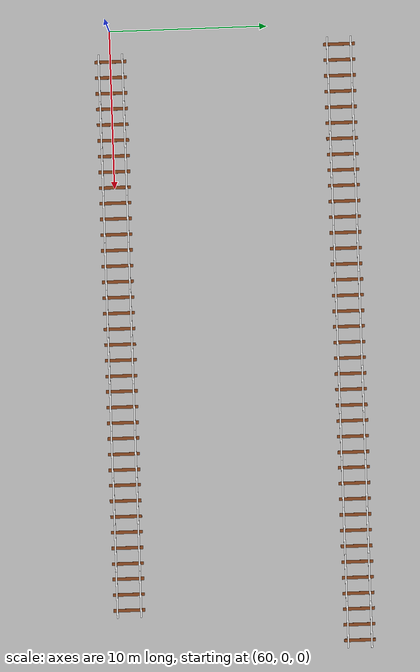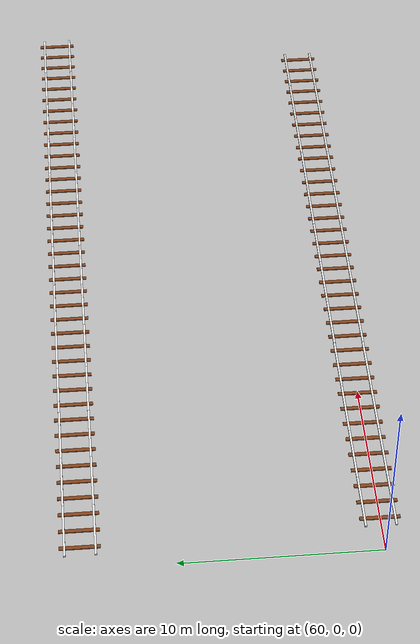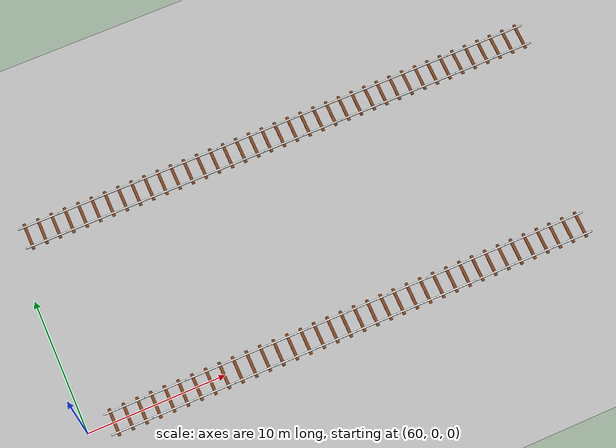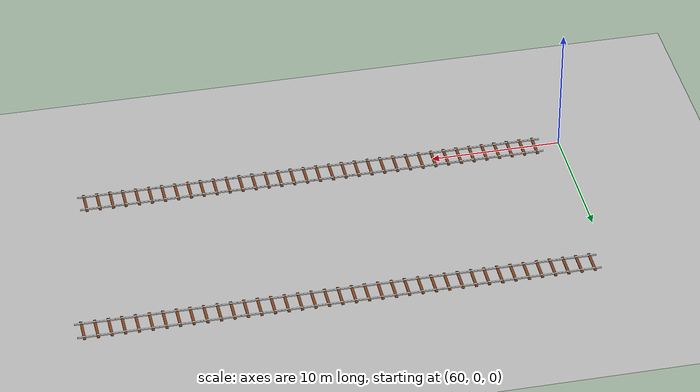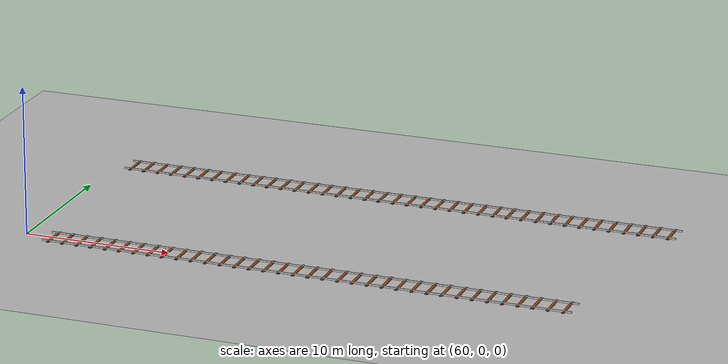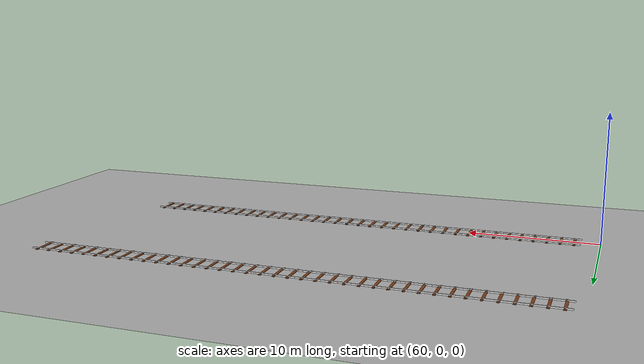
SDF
<sdf version="1.10">
 <world name="myworld">
  <model name="ground_plane">
   <static>true</static>
   <link name="link">
    <collision name="collision">
     <geometry><plane><normal>0 0 1</normal><size>1000 1000</size></plane></geometry>
    </collision>
    <visual name="visual">
     <geometry><plane><normal>0 0 1</normal><size>1000 1000</size></plane></geometry>
     <material>
      <ambient>0.699999988 0.699999988 0.699999988 1</ambient>
      <diffuse>0.699999988 0.699999988 0.699999988 1</diffuse>
     </material>
    </visual>
    <inertial>
     <mass>1</mass>
     <inertia><ixx>1</ixx><ixy>0</ixy><ixz>0</ixz><iyy>1</iyy><iyz>0</iyz><izz>1</izz></inertia>
    </inertial>
   </link>
  </model>
  <model name="rail12_10">
   <static>true</static>
   <pose>62.920200000000001 0.0070395500000000003 0 0 0 0</pose>
   <link name="rail_link">
    <visual name="rail_left">
     <pose>0 0.75 0.050000000000000003 0 0 0</pose>
     <geometry><box><size>3 0.10000000000000001 0.10000000000000001</size></box></geometry>
     <material>
      <ambient>0.800000012 0.800000012 0.800000012 1</ambient>
      <diffuse>0.899999976 0.899999976 0.899999976 1</diffuse>
     </material>
    </visual>
    <visual name="rail_right">
     <pose>0 -0.75 0.050000000000000003 0 0 0</pose>
     <geometry><box><size>3 0.10000000000000001 0.10000000000000001</size></box></geometry>
     <material>
      <ambient>0.800000012 0.800000012 0.800000012 1</ambient>
      <diffuse>0.899999976 0.899999976 0.899999976 1</diffuse>
     </material>
    </visual>
    <visual name="traverse_1">
     <pose>1 0 0.025000000000000001 0 0 0</pose>
     <geometry><box><size>0.20000000000000001 2 0.050000000000000003</size></box></geometry>
     <material>
      <ambient>0.400000006 0.200000003 0.100000001 1</ambient>
      <diffuse>0.5 0.25 0.100000001 1</diffuse>
     </material>
    </visual>
    <visual name="traverse_2">
     <pose>0 0 0.025000000000000001 0 0 0</pose>
     <geometry><box><size>0.20000000000000001 2 0.050000000000000003</size></box></geometry>
     <material>
      <ambient>0.400000006 0.200000003 0.100000001 1</ambient>
      <diffuse>0.5 0.25 0.100000001 1</diffuse>
     </material>
    </visual>
    <visual name="traverse_3">
     <pose>-1 0 0.025000000000000001 0 0 0</pose>
     <geometry><box><size>0.20000000000000001 2 0.050000000000000003</size></box></geometry>
     <material>
      <ambient>0.400000006 0.200000003 0.100000001 1</ambient>
      <diffuse>0.5 0.25 0.100000001 1</diffuse>
     </material>
    </visual>
   </link>
  </model>
  <model name="rail12_11">
   <static>true</static>
   <pose>65.909700000000001 0.0089850999999999993 0 0 0 0</pose>
   <link name="rail_link">
    <visual name="rail_left">
     <pose>0 0.75 0.050000000000000003 0 0 0</pose>
     <geometry><box><size>3 0.10000000000000001 0.10000000000000001</size></box></geometry>
     <material>
      <ambient>0.800000012 0.800000012 0.800000012 1</ambient>
      <diffuse>0.899999976 0.899999976 0.899999976 1</diffuse>
     </material>
    </visual>
    <visual name="rail_right">
     <pose>0 -0.75 0.050000000000000003 0 0 0</pose>
     <geometry><box><size>3 0.10000000000000001 0.10000000000000001</size></box></geometry>
     <material>
      <ambient>0.800000012 0.800000012 0.800000012 1</ambient>
      <diffuse>0.899999976 0.899999976 0.899999976 1</diffuse>
     </material>
    </visual>
    <visual name="traverse_1">
     <pose>1 0 0.025000000000000001 0 0 0</pose>
     <geometry><box><size>0.20000000000000001 2 0.050000000000000003</size></box></geometry>
     <material>
      <ambient>0.400000006 0.200000003 0.100000001 1</ambient>
      <diffuse>0.5 0.25 0.100000001 1</diffuse>
     </material>
    </visual>
    <visual name="traverse_2">
     <pose>0 0 0.025000000000000001 0 0 0</pose>
     <geometry><box><size>0.20000000000000001 2 0.050000000000000003</size></box></geometry>
     <material>
      <ambient>0.400000006 0.200000003 0.100000001 1</ambient>
      <diffuse>0.5 0.25 0.100000001 1</diffuse>
     </material>
    </visual>
    <visual name="traverse_3">
     <pose>-1 0 0.025000000000000001 0 0 0</pose>
     <geometry><box><size>0.20000000000000001 2 0.050000000000000003</size></box></geometry>
     <material>
      <ambient>0.400000006 0.200000003 0.100000001 1</ambient>
      <diffuse>0.5 0.25 0.100000001 1</diffuse>
     </material>
    </visual>
   </link>
  </model>
  <model name="rail12_12">
   <static>true</static>
   <pose>68.912999999999997 0.0099215899999999992 0 0 0 0</pose>
   <link name="rail_link">
    <visual name="rail_left">
     <pose>0 0.75 0.050000000000000003 0 0 0</pose>
     <geometry><box><size>3 0.10000000000000001 0.10000000000000001</size></box></geometry>
     <material>
      <ambient>0.800000012 0.800000012 0.800000012 1</ambient>
      <diffuse>0.899999976 0.899999976 0.899999976 1</diffuse>
     </material>
    </visual>
    <visual name="rail_right">
     <pose>0 -0.75 0.050000000000000003 0 0 0</pose>
     <geometry><box><size>3 0.10000000000000001 0.10000000000000001</size></box></geometry>
     <material>
      <ambient>0.800000012 0.800000012 0.800000012 1</ambient>
      <diffuse>0.899999976 0.899999976 0.899999976 1</diffuse>
     </material>
    </visual>
    <visual name="traverse_1">
     <pose>1 0 0.025000000000000001 0 0 0</pose>
     <geometry><box><size>0.20000000000000001 2 0.050000000000000003</size></box></geometry>
     <material>
      <ambient>0.400000006 0.200000003 0.100000001 1</ambient>
      <diffuse>0.5 0.25 0.100000001 1</diffuse>
     </material>
    </visual>
    <visual name="traverse_2">
     <pose>0 0 0.025000000000000001 0 0 0</pose>
     <geometry><box><size>0.20000000000000001 2 0.050000000000000003</size></box></geometry>
     <material>
      <ambient>0.400000006 0.200000003 0.100000001 1</ambient>
      <diffuse>0.5 0.25 0.100000001 1</diffuse>
     </material>
    </visual>
    <visual name="traverse_3">
     <pose>-1 0 0.025000000000000001 0 0 0</pose>
     <geometry><box><size>0.20000000000000001 2 0.050000000000000003</size></box></geometry>
     <material>
      <ambient>0.400000006 0.200000003 0.100000001 1</ambient>
      <diffuse>0.5 0.25 0.100000001 1</diffuse>
     </material>
    </visual>
   </link>
  </model>
  <model name="rail12_13">
   <static>true</static>
   <pose>71.899600000000007 0.0070941600000000004 0 0 0 0</pose>
   <link name="rail_link">
    <visual name="rail_left">
     <pose>0 0.75 0.050000000000000003 0 0 0</pose>
     <geometry><box><size>3 0.10000000000000001 0.10000000000000001</size></box></geometry>
     <material>
      <ambient>0.800000012 0.800000012 0.800000012 1</ambient>
      <diffuse>0.899999976 0.899999976 0.899999976 1</diffuse>
     </material>
    </visual>
    <visual name="rail_right">
     <pose>0 -0.75 0.050000000000000003 0 0 0</pose>
     <geometry><box><size>3 0.10000000000000001 0.10000000000000001</size></box></geometry>
     <material>
      <ambient>0.800000012 0.800000012 0.800000012 1</ambient>
      <diffuse>0.899999976 0.899999976 0.899999976 1</diffuse>
     </material>
    </visual>
    <visual name="traverse_1">
     <pose>1 0 0.025000000000000001 0 0 0</pose>
     <geometry><box><size>0.20000000000000001 2 0.050000000000000003</size></box></geometry>
     <material>
      <ambient>0.400000006 0.200000003 0.100000001 1</ambient>
      <diffuse>0.5 0.25 0.100000001 1</diffuse>
     </material>
    </visual>
    <visual name="traverse_2">
     <pose>0 0 0.025000000000000001 0 0 0</pose>
     <geometry><box><size>0.20000000000000001 2 0.050000000000000003</size></box></geometry>
     <material>
      <ambient>0.400000006 0.200000003 0.100000001 1</ambient>
      <diffuse>0.5 0.25 0.100000001 1</diffuse>
     </material>
    </visual>
    <visual name="traverse_3">
     <pose>-1 0 0.025000000000000001 0 0 0</pose>
     <geometry><box><size>0.20000000000000001 2 0.050000000000000003</size></box></geometry>
     <material>
      <ambient>0.400000006 0.200000003 0.100000001 1</ambient>
      <diffuse>0.5 0.25 0.100000001 1</diffuse>
     </material>
    </visual>
   </link>
  </model>
  <model name="rail12_14">
   <static>true</static>
   <pose>74.9011 -0.0029030599999999998 0 0 0 0</pose>
   <link name="rail_link">
    <visual name="rail_left">
     <pose>0 0.75 0.050000000000000003 0 0 0</pose>
     <geometry><box><size>3 0.10000000000000001 0.10000000000000001</size></box></geometry>
     <material>
      <ambient>0.800000012 0.800000012 0.800000012 1</ambient>
      <diffuse>0.899999976 0.899999976 0.899999976 1</diffuse>
     </material>
    </visual>
    <visual name="rail_right">
     <pose>0 -0.75 0.050000000000000003 0 0 0</pose>
     <geometry><box><size>3 0.10000000000000001 0.10000000000000001</size></box></geometry>
     <material>
      <ambient>0.800000012 0.800000012 0.800000012 1</ambient>
      <diffuse>0.899999976 0.899999976 0.899999976 1</diffuse>
     </material>
    </visual>
    <visual name="traverse_1">
     <pose>1 0 0.025000000000000001 0 0 0</pose>
     <geometry><box><size>0.20000000000000001 2 0.050000000000000003</size></box></geometry>
     <material>
      <ambient>0.400000006 0.200000003 0.100000001 1</ambient>
      <diffuse>0.5 0.25 0.100000001 1</diffuse>
     </material>
    </visual>
    <visual name="traverse_2">
     <pose>0 0 0.025000000000000001 0 0 0</pose>
     <geometry><box><size>0.20000000000000001 2 0.050000000000000003</size></box></geometry>
     <material>
      <ambient>0.400000006 0.200000003 0.100000001 1</ambient>
      <diffuse>0.5 0.25 0.100000001 1</diffuse>
     </material>
    </visual>
    <visual name="traverse_3">
     <pose>-1 0 0.025000000000000001 0 0 0</pose>
     <geometry><box><size>0.20000000000000001 2 0.050000000000000003</size></box></geometry>
     <material>
      <ambient>0.400000006 0.200000003 0.100000001 1</ambient>
      <diffuse>0.5 0.25 0.100000001 1</diffuse>
     </material>
    </visual>
   </link>
  </model>
  <model name="rail12_15">
   <static>true</static>
   <pose>77.900700000000001 -0.0032721 0 0 0 0</pose>
   <link name="rail_link">
    <visual name="rail_left">
     <pose>0 0.75 0.050000000000000003 0 0 0</pose>
     <geometry><box><size>3 0.10000000000000001 0.10000000000000001</size></box></geometry>
     <material>
      <ambient>0.800000012 0.800000012 0.800000012 1</ambient>
      <diffuse>0.899999976 0.899999976 0.899999976 1</diffuse>
     </material>
    </visual>
    <visual name="rail_right">
     <pose>0 -0.75 0.050000000000000003 0 0 0</pose>
     <geometry><box><size>3 0.10000000000000001 0.10000000000000001</size></box></geometry>
     <material>
      <ambient>0.800000012 0.800000012 0.800000012 1</ambient>
      <diffuse>0.899999976 0.899999976 0.899999976 1</diffuse>
     </material>
    </visual>
    <visual name="traverse_1">
     <pose>1 0 0.025000000000000001 0 0 0</pose>
     <geometry><box><size>0.20000000000000001 2 0.050000000000000003</size></box></geometry>
     <material>
      <ambient>0.400000006 0.200000003 0.100000001 1</ambient>
      <diffuse>0.5 0.25 0.100000001 1</diffuse>
     </material>
    </visual>
    <visual name="traverse_2">
     <pose>0 0 0.025000000000000001 0 0 0</pose>
     <geometry><box><size>0.20000000000000001 2 0.050000000000000003</size></box></geometry>
     <material>
      <ambient>0.400000006 0.200000003 0.100000001 1</ambient>
      <diffuse>0.5 0.25 0.100000001 1</diffuse>
     </material>
    </visual>
    <visual name="traverse_3">
     <pose>-1 0 0.025000000000000001 0 0 0</pose>
     <geometry><box><size>0.20000000000000001 2 0.050000000000000003</size></box></geometry>
     <material>
      <ambient>0.400000006 0.200000003 0.100000001 1</ambient>
      <diffuse>0.5 0.25 0.100000001 1</diffuse>
     </material>
    </visual>
   </link>
  </model>
  <model name="rail12_16">
   <static>true</static>
   <pose>80.891599999999997 -0.0016588499999999999 0 0 0 0</pose>
   <link name="rail_link">
    <visual name="rail_left">
     <pose>0 0.75 0.050000000000000003 0 0 0</pose>
     <geometry><box><size>3 0.10000000000000001 0.10000000000000001</size></box></geometry>
     <material>
      <ambient>0.800000012 0.800000012 0.800000012 1</ambient>
      <diffuse>0.899999976 0.899999976 0.899999976 1</diffuse>
     </material>
    </visual>
    <visual name="rail_right">
     <pose>0 -0.75 0.050000000000000003 0 0 0</pose>
     <geometry><box><size>3 0.10000000000000001 0.10000000000000001</size></box></geometry>
     <material>
      <ambient>0.800000012 0.800000012 0.800000012 1</ambient>
      <diffuse>0.899999976 0.899999976 0.899999976 1</diffuse>
     </material>
    </visual>
    <visual name="traverse_1">
     <pose>1 0 0.025000000000000001 0 0 0</pose>
     <geometry><box><size>0.20000000000000001 2 0.050000000000000003</size></box></geometry>
     <material>
      <ambient>0.400000006 0.200000003 0.100000001 1</ambient>
      <diffuse>0.5 0.25 0.100000001 1</diffuse>
     </material>
    </visual>
    <visual name="traverse_2">
     <pose>0 0 0.025000000000000001 0 0 0</pose>
     <geometry><box><size>0.20000000000000001 2 0.050000000000000003</size></box></geometry>
     <material>
      <ambient>0.400000006 0.200000003 0.100000001 1</ambient>
      <diffuse>0.5 0.25 0.100000001 1</diffuse>
     </material>
    </visual>
    <visual name="traverse_3">
     <pose>-1 0 0.025000000000000001 0 0 0</pose>
     <geometry><box><size>0.20000000000000001 2 0.050000000000000003</size></box></geometry>
     <material>
      <ambient>0.400000006 0.200000003 0.100000001 1</ambient>
      <diffuse>0.5 0.25 0.100000001 1</diffuse>
     </material>
    </visual>
   </link>
  </model>
  <model name="rail12_17">
   <static>true</static>
   <pose>83.869900000000001 -0.0010890100000000001 0 0 0 0</pose>
   <link name="rail_link">
    <visual name="rail_left">
     <pose>0 0.75 0.050000000000000003 0 0 0</pose>
     <geometry><box><size>3 0.10000000000000001 0.10000000000000001</size></box></geometry>
     <material>
      <ambient>0.800000012 0.800000012 0.800000012 1</ambient>
      <diffuse>0.899999976 0.899999976 0.899999976 1</diffuse>
     </material>
    </visual>
    <visual name="rail_right">
     <pose>0 -0.75 0.050000000000000003 0 0 0</pose>
     <geometry><box><size>3 0.10000000000000001 0.10000000000000001</size></box></geometry>
     <material>
      <ambient>0.800000012 0.800000012 0.800000012 1</ambient>
      <diffuse>0.899999976 0.899999976 0.899999976 1</diffuse>
     </material>
    </visual>
    <visual name="traverse_1">
     <pose>1 0 0.025000000000000001 0 0 0</pose>
     <geometry><box><size>0.20000000000000001 2 0.050000000000000003</size></box></geometry>
     <material>
      <ambient>0.400000006 0.200000003 0.100000001 1</ambient>
      <diffuse>0.5 0.25 0.100000001 1</diffuse>
     </material>
    </visual>
    <visual name="traverse_2">
     <pose>0 0 0.025000000000000001 0 0 0</pose>
     <geometry><box><size>0.20000000000000001 2 0.050000000000000003</size></box></geometry>
     <material>
      <ambient>0.400000006 0.200000003 0.100000001 1</ambient>
      <diffuse>0.5 0.25 0.100000001 1</diffuse>
     </material>
    </visual>
    <visual name="traverse_3">
     <pose>-1 0 0.025000000000000001 0 0 0</pose>
     <geometry><box><size>0.20000000000000001 2 0.050000000000000003</size></box></geometry>
     <material>
      <ambient>0.400000006 0.200000003 0.100000001 1</ambient>
      <diffuse>0.5 0.25 0.100000001 1</diffuse>
     </material>
    </visual>
   </link>
  </model>
  <model name="rail12_18">
   <static>true</static>
   <pose>86.861400000000003 -0.0080028800000000004 0 0 0 0</pose>
   <link name="rail_link">
    <visual name="rail_left">
     <pose>0 0.75 0.050000000000000003 0 0 0</pose>
     <geometry><box><size>3 0.10000000000000001 0.10000000000000001</size></box></geometry>
     <material>
      <ambient>0.800000012 0.800000012 0.800000012 1</ambient>
      <diffuse>0.899999976 0.899999976 0.899999976 1</diffuse>
     </material>
    </visual>
    <visual name="rail_right">
     <pose>0 -0.75 0.050000000000000003 0 0 0</pose>
     <geometry><box><size>3 0.10000000000000001 0.10000000000000001</size></box></geometry>
     <material>
      <ambient>0.800000012 0.800000012 0.800000012 1</ambient>
      <diffuse>0.899999976 0.899999976 0.899999976 1</diffuse>
     </material>
    </visual>
    <visual name="traverse_1">
     <pose>1 0 0.025000000000000001 0 0 0</pose>
     <geometry><box><size>0.20000000000000001 2 0.050000000000000003</size></box></geometry>
     <material>
      <ambient>0.400000006 0.200000003 0.100000001 1</ambient>
      <diffuse>0.5 0.25 0.100000001 1</diffuse>
     </material>
    </visual>
    <visual name="traverse_2">
     <pose>0 0 0.025000000000000001 0 0 0</pose>
     <geometry><box><size>0.20000000000000001 2 0.050000000000000003</size></box></geometry>
     <material>
      <ambient>0.400000006 0.200000003 0.100000001 1</ambient>
      <diffuse>0.5 0.25 0.100000001 1</diffuse>
     </material>
    </visual>
    <visual name="traverse_3">
     <pose>-1 0 0.025000000000000001 0 0 0</pose>
     <geometry><box><size>0.20000000000000001 2 0.050000000000000003</size></box></geometry>
     <material>
      <ambient>0.400000006 0.200000003 0.100000001 1</ambient>
      <diffuse>0.5 0.25 0.100000001 1</diffuse>
     </material>
    </visual>
   </link>
  </model>
  <model name="rail12_19">
   <static>true</static>
   <pose>89.831900000000005 -0.0024379800000000002 0 0 0 0</pose>
   <link name="rail_link">
    <visual name="rail_left">
     <pose>0 0.75 0.050000000000000003 0 0 0</pose>
     <geometry><box><size>3 0.10000000000000001 0.10000000000000001</size></box></geometry>
     <material>
      <ambient>0.800000012 0.800000012 0.800000012 1</ambient>
      <diffuse>0.899999976 0.899999976 0.899999976 1</diffuse>
     </material>
    </visual>
    <visual name="rail_right">
     <pose>0 -0.75 0.050000000000000003 0 0 0</pose>
     <geometry><box><size>3 0.10000000000000001 0.10000000000000001</size></box></geometry>
     <material>
      <ambient>0.800000012 0.800000012 0.800000012 1</ambient>
      <diffuse>0.899999976 0.899999976 0.899999976 1</diffuse>
     </material>
    </visual>
    <visual name="traverse_1">
     <pose>1 0 0.025000000000000001 0 0 0</pose>
     <geometry><box><size>0.20000000000000001 2 0.050000000000000003</size></box></geometry>
     <material>
      <ambient>0.400000006 0.200000003 0.100000001 1</ambient>
      <diffuse>0.5 0.25 0.100000001 1</diffuse>
     </material>
    </visual>
    <visual name="traverse_2">
     <pose>0 0 0.025000000000000001 0 0 0</pose>
     <geometry><box><size>0.20000000000000001 2 0.050000000000000003</size></box></geometry>
     <material>
      <ambient>0.400000006 0.200000003 0.100000001 1</ambient>
      <diffuse>0.5 0.25 0.100000001 1</diffuse>
     </material>
    </visual>
    <visual name="traverse_3">
     <pose>-1 0 0.025000000000000001 0 0 0</pose>
     <geometry><box><size>0.20000000000000001 2 0.050000000000000003</size></box></geometry>
     <material>
      <ambient>0.400000006 0.200000003 0.100000001 1</ambient>
      <diffuse>0.5 0.25 0.100000001 1</diffuse>
     </material>
    </visual>
   </link>
  </model>
  <model name="rail12_20">
   <static>true</static>
   <pose>92.8245 -0.00114927 0 0 0 0</pose>
   <link name="rail_link">
    <visual name="rail_left">
     <pose>0 0.75 0.050000000000000003 0 0 0</pose>
     <geometry><box><size>3 0.10000000000000001 0.10000000000000001</size></box></geometry>
     <material>
      <ambient>0.800000012 0.800000012 0.800000012 1</ambient>
      <diffuse>0.899999976 0.899999976 0.899999976 1</diffuse>
     </material>
    </visual>
    <visual name="rail_right">
     <pose>0 -0.75 0.050000000000000003 0 0 0</pose>
     <geometry><box><size>3 0.10000000000000001 0.10000000000000001</size></box></geometry>
     <material>
      <ambient>0.800000012 0.800000012 0.800000012 1</ambient>
      <diffuse>0.899999976 0.899999976 0.899999976 1</diffuse>
     </material>
    </visual>
    <visual name="traverse_1">
     <pose>1 0 0.025000000000000001 0 0 0</pose>
     <geometry><box><size>0.20000000000000001 2 0.050000000000000003</size></box></geometry>
     <material>
      <ambient>0.400000006 0.200000003 0.100000001 1</ambient>
      <diffuse>0.5 0.25 0.100000001 1</diffuse>
     </material>
    </visual>
    <visual name="traverse_2">
     <pose>0 0 0.025000000000000001 0 0 0</pose>
     <geometry><box><size>0.20000000000000001 2 0.050000000000000003</size></box></geometry>
     <material>
      <ambient>0.400000006 0.200000003 0.100000001 1</ambient>
      <diffuse>0.5 0.25 0.100000001 1</diffuse>
     </material>
    </visual>
    <visual name="traverse_3">
     <pose>-1 0 0.025000000000000001 0 0 0</pose>
     <geometry><box><size>0.20000000000000001 2 0.050000000000000003</size></box></geometry>
     <material>
      <ambient>0.400000006 0.200000003 0.100000001 1</ambient>
      <diffuse>0.5 0.25 0.100000001 1</diffuse>
     </material>
    </visual>
   </link>
  </model>
  <model name="rail12_21">
   <static>true</static>
   <pose>95.793599999999998 -0.0080347000000000005 0 0 0 0</pose>
   <link name="rail_link">
    <visual name="rail_left">
     <pose>0 0.75 0.050000000000000003 0 0 0</pose>
     <geometry><box><size>3 0.10000000000000001 0.10000000000000001</size></box></geometry>
     <material>
      <ambient>0.800000012 0.800000012 0.800000012 1</ambient>
      <diffuse>0.899999976 0.899999976 0.899999976 1</diffuse>
     </material>
    </visual>
    <visual name="rail_right">
     <pose>0 -0.75 0.050000000000000003 0 0 0</pose>
     <geometry><box><size>3 0.10000000000000001 0.10000000000000001</size></box></geometry>
     <material>
      <ambient>0.800000012 0.800000012 0.800000012 1</ambient>
      <diffuse>0.899999976 0.899999976 0.899999976 1</diffuse>
     </material>
    </visual>
    <visual name="traverse_1">
     <pose>1 0 0.025000000000000001 0 0 0</pose>
     <geometry><box><size>0.20000000000000001 2 0.050000000000000003</size></box></geometry>
     <material>
      <ambient>0.400000006 0.200000003 0.100000001 1</ambient>
      <diffuse>0.5 0.25 0.100000001 1</diffuse>
     </material>
    </visual>
    <visual name="traverse_2">
     <pose>0 0 0.025000000000000001 0 0 0</pose>
     <geometry><box><size>0.20000000000000001 2 0.050000000000000003</size></box></geometry>
     <material>
      <ambient>0.400000006 0.200000003 0.100000001 1</ambient>
      <diffuse>0.5 0.25 0.100000001 1</diffuse>
     </material>
    </visual>
    <visual name="traverse_3">
     <pose>-1 0 0.025000000000000001 0 0 0</pose>
     <geometry><box><size>0.20000000000000001 2 0.050000000000000003</size></box></geometry>
     <material>
      <ambient>0.400000006 0.200000003 0.100000001 1</ambient>
      <diffuse>0.5 0.25 0.100000001 1</diffuse>
     </material>
    </visual>
   </link>
  </model>
  <model name="rail12_37_44">
   <static>true</static>
   <pose>62.284199999999998 14.5541099999999997 0 0 0 0</pose>
   <link name="rail_link">
    <visual name="rail_left">
     <pose>0 0.75 0.050000000000000003 0 0 0</pose>
     <geometry><box><size>3 0.10000000000000001 0.10000000000000001</size></box></geometry>
     <material>
      <ambient>0.800000012 0.800000012 0.800000012 1</ambient>
      <diffuse>0.899999976 0.899999976 0.899999976 1</diffuse>
     </material>
    </visual>
    <visual name="rail_right">
     <pose>0 -0.75 0.050000000000000003 0 0 0</pose>
     <geometry><box><size>3 0.10000000000000001 0.10000000000000001</size></box></geometry>
     <material>
      <ambient>0.800000012 0.800000012 0.800000012 1</ambient>
      <diffuse>0.899999976 0.899999976 0.899999976 1</diffuse>
     </material>
    </visual>
    <visual name="traverse_1">
     <pose>1 0 0.025000000000000001 0 0 0</pose>
     <geometry><box><size>0.20000000000000001 2 0.050000000000000003</size></box></geometry>
     <material>
      <ambient>0.400000006 0.200000003 0.100000001 1</ambient>
      <diffuse>0.5 0.25 0.100000001 1</diffuse>
     </material>
    </visual>
    <visual name="traverse_2">
     <pose>0 0 0.025000000000000001 0 0 0</pose>
     <geometry><box><size>0.20000000000000001 2 0.050000000000000003</size></box></geometry>
     <material>
      <ambient>0.400000006 0.200000003 0.100000001 1</ambient>
      <diffuse>0.5 0.25 0.100000001 1</diffuse>
     </material>
    </visual>
    <visual name="traverse_3">
     <pose>-1 0 0.025000000000000001 0 0 0</pose>
     <geometry><box><size>0.20000000000000001 2 0.050000000000000003</size></box></geometry>
     <material>
      <ambient>0.400000006 0.200000003 0.100000001 1</ambient>
      <diffuse>0.5 0.25 0.100000001 1</diffuse>
     </material>
    </visual>
   </link>
  </model>
  <model name="rail12_37_45">
   <static>true</static>
   <pose>65.2821 14.5531800000000002 0 0 0 0</pose>
   <link name="rail_link">
    <visual name="rail_left">
     <pose>0 0.75 0.050000000000000003 0 0 0</pose>
     <geometry><box><size>3 0.10000000000000001 0.10000000000000001</size></box></geometry>
     <material>
      <ambient>0.800000012 0.800000012 0.800000012 1</ambient>
      <diffuse>0.899999976 0.899999976 0.899999976 1</diffuse>
     </material>
    </visual>
    <visual name="rail_right">
     <pose>0 -0.75 0.050000000000000003 0 0 0</pose>
     <geometry><box><size>3 0.10000000000000001 0.10000000000000001</size></box></geometry>
     <material>
      <ambient>0.800000012 0.800000012 0.800000012 1</ambient>
      <diffuse>0.899999976 0.899999976 0.899999976 1</diffuse>
     </material>
    </visual>
    <visual name="traverse_1">
     <pose>1 0 0.025000000000000001 0 0 0</pose>
     <geometry><box><size>0.20000000000000001 2 0.050000000000000003</size></box></geometry>
     <material>
      <ambient>0.400000006 0.200000003 0.100000001 1</ambient>
      <diffuse>0.5 0.25 0.100000001 1</diffuse>
     </material>
    </visual>
    <visual name="traverse_2">
     <pose>0 0 0.025000000000000001 0 0 0</pose>
     <geometry><box><size>0.20000000000000001 2 0.050000000000000003</size></box></geometry>
     <material>
      <ambient>0.400000006 0.200000003 0.100000001 1</ambient>
      <diffuse>0.5 0.25 0.100000001 1</diffuse>
     </material>
    </visual>
    <visual name="traverse_3">
     <pose>-1 0 0.025000000000000001 0 0 0</pose>
     <geometry><box><size>0.20000000000000001 2 0.050000000000000003</size></box></geometry>
     <material>
      <ambient>0.400000006 0.200000003 0.100000001 1</ambient>
      <diffuse>0.5 0.25 0.100000001 1</diffuse>
     </material>
    </visual>
   </link>
  </model>
  <model name="rail12_37_46">
   <static>true</static>
   <pose>68.282799999999995 14.5554300000000003 0 0 0 0</pose>
   <link name="rail_link">
    <visual name="rail_left">
     <pose>0 0.75 0.050000000000000003 0 0 0</pose>
     <geometry><box><size>3 0.10000000000000001 0.10000000000000001</size></box></geometry>
     <material>
      <ambient>0.800000012 0.800000012 0.800000012 1</ambient>
      <diffuse>0.899999976 0.899999976 0.899999976 1</diffuse>
     </material>
    </visual>
    <visual name="rail_right">
     <pose>0 -0.75 0.050000000000000003 0 0 0</pose>
     <geometry><box><size>3 0.10000000000000001 0.10000000000000001</size></box></geometry>
     <material>
      <ambient>0.800000012 0.800000012 0.800000012 1</ambient>
      <diffuse>0.899999976 0.899999976 0.899999976 1</diffuse>
     </material>
    </visual>
    <visual name="traverse_1">
     <pose>1 0 0.025000000000000001 0 0 0</pose>
     <geometry><box><size>0.20000000000000001 2 0.050000000000000003</size></box></geometry>
     <material>
      <ambient>0.400000006 0.200000003 0.100000001 1</ambient>
      <diffuse>0.5 0.25 0.100000001 1</diffuse>
     </material>
    </visual>
    <visual name="traverse_2">
     <pose>0 0 0.025000000000000001 0 0 0</pose>
     <geometry><box><size>0.20000000000000001 2 0.050000000000000003</size></box></geometry>
     <material>
      <ambient>0.400000006 0.200000003 0.100000001 1</ambient>
      <diffuse>0.5 0.25 0.100000001 1</diffuse>
     </material>
    </visual>
    <visual name="traverse_3">
     <pose>-1 0 0.025000000000000001 0 0 0</pose>
     <geometry><box><size>0.20000000000000001 2 0.050000000000000003</size></box></geometry>
     <material>
      <ambient>0.400000006 0.200000003 0.100000001 1</ambient>
      <diffuse>0.5 0.25 0.100000001 1</diffuse>
     </material>
    </visual>
   </link>
  </model>
  <model name="rail12_37_47">
   <static>true</static>
   <pose>71.269900000000007 14.5611499999999996 0 0 0 0</pose>
   <link name="rail_link">
    <visual name="rail_left">
     <pose>0 0.75 0.050000000000000003 0 0 0</pose>
     <geometry><box><size>3 0.10000000000000001 0.10000000000000001</size></box></geometry>
     <material>
      <ambient>0.800000012 0.800000012 0.800000012 1</ambient>
      <diffuse>0.899999976 0.899999976 0.899999976 1</diffuse>
     </material>
    </visual>
    <visual name="rail_right">
     <pose>0 -0.75 0.050000000000000003 0 0 0</pose>
     <geometry><box><size>3 0.10000000000000001 0.10000000000000001</size></box></geometry>
     <material>
      <ambient>0.800000012 0.800000012 0.800000012 1</ambient>
      <diffuse>0.899999976 0.899999976 0.899999976 1</diffuse>
     </material>
    </visual>
    <visual name="traverse_1">
     <pose>1 0 0.025000000000000001 0 0 0</pose>
     <geometry><box><size>0.20000000000000001 2 0.050000000000000003</size></box></geometry>
     <material>
      <ambient>0.400000006 0.200000003 0.100000001 1</ambient>
      <diffuse>0.5 0.25 0.100000001 1</diffuse>
     </material>
    </visual>
    <visual name="traverse_2">
     <pose>0 0 0.025000000000000001 0 0 0</pose>
     <geometry><box><size>0.20000000000000001 2 0.050000000000000003</size></box></geometry>
     <material>
      <ambient>0.400000006 0.200000003 0.100000001 1</ambient>
      <diffuse>0.5 0.25 0.100000001 1</diffuse>
     </material>
    </visual>
    <visual name="traverse_3">
     <pose>-1 0 0.025000000000000001 0 0 0</pose>
     <geometry><box><size>0.20000000000000001 2 0.050000000000000003</size></box></geometry>
     <material>
      <ambient>0.400000006 0.200000003 0.100000001 1</ambient>
      <diffuse>0.5 0.25 0.100000001 1</diffuse>
     </material>
    </visual>
   </link>
  </model>
  <model name="rail12_37_48">
   <static>true</static>
   <pose>74.267700000000005 14.5602900000000002 0 0 0 0</pose>
   <link name="rail_link">
    <visual name="rail_left">
     <pose>0 0.75 0.050000000000000003 0 0 0</pose>
     <geometry><box><size>3 0.10000000000000001 0.10000000000000001</size></box></geometry>
     <material>
      <ambient>0.800000012 0.800000012 0.800000012 1</ambient>
      <diffuse>0.899999976 0.899999976 0.899999976 1</diffuse>
     </material>
    </visual>
    <visual name="rail_right">
     <pose>0 -0.75 0.050000000000000003 0 0 0</pose>
     <geometry><box><size>3 0.10000000000000001 0.10000000000000001</size></box></geometry>
     <material>
      <ambient>0.800000012 0.800000012 0.800000012 1</ambient>
      <diffuse>0.899999976 0.899999976 0.899999976 1</diffuse>
     </material>
    </visual>
    <visual name="traverse_1">
     <pose>1 0 0.025000000000000001 0 0 0</pose>
     <geometry><box><size>0.20000000000000001 2 0.050000000000000003</size></box></geometry>
     <material>
      <ambient>0.400000006 0.200000003 0.100000001 1</ambient>
      <diffuse>0.5 0.25 0.100000001 1</diffuse>
     </material>
    </visual>
    <visual name="traverse_2">
     <pose>0 0 0.025000000000000001 0 0 0</pose>
     <geometry><box><size>0.20000000000000001 2 0.050000000000000003</size></box></geometry>
     <material>
      <ambient>0.400000006 0.200000003 0.100000001 1</ambient>
      <diffuse>0.5 0.25 0.100000001 1</diffuse>
     </material>
    </visual>
    <visual name="traverse_3">
     <pose>-1 0 0.025000000000000001 0 0 0</pose>
     <geometry><box><size>0.20000000000000001 2 0.050000000000000003</size></box></geometry>
     <material>
      <ambient>0.400000006 0.200000003 0.100000001 1</ambient>
      <diffuse>0.5 0.25 0.100000001 1</diffuse>
     </material>
    </visual>
   </link>
  </model>
  <model name="rail12_37_49">
   <static>true</static>
   <pose>77.260300000000001 14.5647599999999997 0 0 0 0</pose>
   <link name="rail_link">
    <visual name="rail_left">
     <pose>0 0.75 0.050000000000000003 0 0 0</pose>
     <geometry><box><size>3 0.10000000000000001 0.10000000000000001</size></box></geometry>
     <material>
      <ambient>0.800000012 0.800000012 0.800000012 1</ambient>
      <diffuse>0.899999976 0.899999976 0.899999976 1</diffuse>
     </material>
    </visual>
    <visual name="rail_right">
     <pose>0 -0.75 0.050000000000000003 0 0 0</pose>
     <geometry><box><size>3 0.10000000000000001 0.10000000000000001</size></box></geometry>
     <material>
      <ambient>0.800000012 0.800000012 0.800000012 1</ambient>
      <diffuse>0.899999976 0.899999976 0.899999976 1</diffuse>
     </material>
    </visual>
    <visual name="traverse_1">
     <pose>1 0 0.025000000000000001 0 0 0</pose>
     <geometry><box><size>0.20000000000000001 2 0.050000000000000003</size></box></geometry>
     <material>
      <ambient>0.400000006 0.200000003 0.100000001 1</ambient>
      <diffuse>0.5 0.25 0.100000001 1</diffuse>
     </material>
    </visual>
    <visual name="traverse_2">
     <pose>0 0 0.025000000000000001 0 0 0</pose>
     <geometry><box><size>0.20000000000000001 2 0.050000000000000003</size></box></geometry>
     <material>
      <ambient>0.400000006 0.200000003 0.100000001 1</ambient>
      <diffuse>0.5 0.25 0.100000001 1</diffuse>
     </material>
    </visual>
    <visual name="traverse_3">
     <pose>-1 0 0.025000000000000001 0 0 0</pose>
     <geometry><box><size>0.20000000000000001 2 0.050000000000000003</size></box></geometry>
     <material>
      <ambient>0.400000006 0.200000003 0.100000001 1</ambient>
      <diffuse>0.5 0.25 0.100000001 1</diffuse>
     </material>
    </visual>
   </link>
  </model>
  <model name="rail12_37_50">
   <static>true</static>
   <pose>80.240200000000002 14.5645199999999999 0 0 0 0</pose>
   <link name="rail_link">
    <visual name="rail_left">
     <pose>0 0.75 0.050000000000000003 0 0 0</pose>
     <geometry><box><size>3 0.10000000000000001 0.10000000000000001</size></box></geometry>
     <material>
      <ambient>0.800000012 0.800000012 0.800000012 1</ambient>
      <diffuse>0.899999976 0.899999976 0.899999976 1</diffuse>
     </material>
    </visual>
    <visual name="rail_right">
     <pose>0 -0.75 0.050000000000000003 0 0 0</pose>
     <geometry><box><size>3 0.10000000000000001 0.10000000000000001</size></box></geometry>
     <material>
      <ambient>0.800000012 0.800000012 0.800000012 1</ambient>
      <diffuse>0.899999976 0.899999976 0.899999976 1</diffuse>
     </material>
    </visual>
    <visual name="traverse_1">
     <pose>1 0 0.025000000000000001 0 0 0</pose>
     <geometry><box><size>0.20000000000000001 2 0.050000000000000003</size></box></geometry>
     <material>
      <ambient>0.400000006 0.200000003 0.100000001 1</ambient>
      <diffuse>0.5 0.25 0.100000001 1</diffuse>
     </material>
    </visual>
    <visual name="traverse_2">
     <pose>0 0 0.025000000000000001 0 0 0</pose>
     <geometry><box><size>0.20000000000000001 2 0.050000000000000003</size></box></geometry>
     <material>
      <ambient>0.400000006 0.200000003 0.100000001 1</ambient>
      <diffuse>0.5 0.25 0.100000001 1</diffuse>
     </material>
    </visual>
    <visual name="traverse_3">
     <pose>-1 0 0.025000000000000001 0 0 0</pose>
     <geometry><box><size>0.20000000000000001 2 0.050000000000000003</size></box></geometry>
     <material>
      <ambient>0.400000006 0.200000003 0.100000001 1</ambient>
      <diffuse>0.5 0.25 0.100000001 1</diffuse>
     </material>
    </visual>
   </link>
  </model>
  <model name="rail12_37_51">
   <static>true</static>
   <pose>83.238200000000006 14.5689299999999999 0 0 0 0</pose>
   <link name="rail_link">
    <visual name="rail_left">
     <pose>0 0.75 0.050000000000000003 0 0 0</pose>
     <geometry><box><size>3 0.10000000000000001 0.10000000000000001</size></box></geometry>
     <material>
      <ambient>0.800000012 0.800000012 0.800000012 1</ambient>
      <diffuse>0.899999976 0.899999976 0.899999976 1</diffuse>
     </material>
    </visual>
    <visual name="rail_right">
     <pose>0 -0.75 0.050000000000000003 0 0 0</pose>
     <geometry><box><size>3 0.10000000000000001 0.10000000000000001</size></box></geometry>
     <material>
      <ambient>0.800000012 0.800000012 0.800000012 1</ambient>
      <diffuse>0.899999976 0.899999976 0.899999976 1</diffuse>
     </material>
    </visual>
    <visual name="traverse_1">
     <pose>1 0 0.025000000000000001 0 0 0</pose>
     <geometry><box><size>0.20000000000000001 2 0.050000000000000003</size></box></geometry>
     <material>
      <ambient>0.400000006 0.200000003 0.100000001 1</ambient>
      <diffuse>0.5 0.25 0.100000001 1</diffuse>
     </material>
    </visual>
    <visual name="traverse_2">
     <pose>0 0 0.025000000000000001 0 0 0</pose>
     <geometry><box><size>0.20000000000000001 2 0.050000000000000003</size></box></geometry>
     <material>
      <ambient>0.400000006 0.200000003 0.100000001 1</ambient>
      <diffuse>0.5 0.25 0.100000001 1</diffuse>
     </material>
    </visual>
    <visual name="traverse_3">
     <pose>-1 0 0.025000000000000001 0 0 0</pose>
     <geometry><box><size>0.20000000000000001 2 0.050000000000000003</size></box></geometry>
     <material>
      <ambient>0.400000006 0.200000003 0.100000001 1</ambient>
      <diffuse>0.5 0.25 0.100000001 1</diffuse>
     </material>
    </visual>
   </link>
  </model>
  <model name="rail12_37_52">
   <static>true</static>
   <pose>86.230199999999996 14.5695499999999996 0 0 0 0</pose>
   <link name="rail_link">
    <visual name="rail_left">
     <pose>0 0.75 0.050000000000000003 0 0 0</pose>
     <geometry><box><size>3 0.10000000000000001 0.10000000000000001</size></box></geometry>
     <material>
      <ambient>0.800000012 0.800000012 0.800000012 1</ambient>
      <diffuse>0.899999976 0.899999976 0.899999976 1</diffuse>
     </material>
    </visual>
    <visual name="rail_right">
     <pose>0 -0.75 0.050000000000000003 0 0 0</pose>
     <geometry><box><size>3 0.10000000000000001 0.10000000000000001</size></box></geometry>
     <material>
      <ambient>0.800000012 0.800000012 0.800000012 1</ambient>
      <diffuse>0.899999976 0.899999976 0.899999976 1</diffuse>
     </material>
    </visual>
    <visual name="traverse_1">
     <pose>1 0 0.025000000000000001 0 0 0</pose>
     <geometry><box><size>0.20000000000000001 2 0.050000000000000003</size></box></geometry>
     <material>
      <ambient>0.400000006 0.200000003 0.100000001 1</ambient>
      <diffuse>0.5 0.25 0.100000001 1</diffuse>
     </material>
    </visual>
    <visual name="traverse_2">
     <pose>0 0 0.025000000000000001 0 0 0</pose>
     <geometry><box><size>0.20000000000000001 2 0.050000000000000003</size></box></geometry>
     <material>
      <ambient>0.400000006 0.200000003 0.100000001 1</ambient>
      <diffuse>0.5 0.25 0.100000001 1</diffuse>
     </material>
    </visual>
    <visual name="traverse_3">
     <pose>-1 0 0.025000000000000001 0 0 0</pose>
     <geometry><box><size>0.20000000000000001 2 0.050000000000000003</size></box></geometry>
     <material>
      <ambient>0.400000006 0.200000003 0.100000001 1</ambient>
      <diffuse>0.5 0.25 0.100000001 1</diffuse>
     </material>
    </visual>
   </link>
  </model>
  <model name="rail12_37_53">
   <static>true</static>
   <pose>89.204400000000007 14.5695499999999996 0 0 0 0</pose>
   <link name="rail_link">
    <visual name="rail_left">
     <pose>0 0.75 0.050000000000000003 0 0 0</pose>
     <geometry><box><size>3 0.10000000000000001 0.10000000000000001</size></box></geometry>
     <material>
      <ambient>0.800000012 0.800000012 0.800000012 1</ambient>
      <diffuse>0.899999976 0.899999976 0.899999976 1</diffuse>
     </material>
    </visual>
    <visual name="rail_right">
     <pose>0 -0.75 0.050000000000000003 0 0 0</pose>
     <geometry><box><size>3 0.10000000000000001 0.10000000000000001</size></box></geometry>
     <material>
      <ambient>0.800000012 0.800000012 0.800000012 1</ambient>
      <diffuse>0.899999976 0.899999976 0.899999976 1</diffuse>
     </material>
    </visual>
    <visual name="traverse_1">
     <pose>1 0 0.025000000000000001 0 0 0</pose>
     <geometry><box><size>0.20000000000000001 2 0.050000000000000003</size></box></geometry>
     <material>
      <ambient>0.400000006 0.200000003 0.100000001 1</ambient>
      <diffuse>0.5 0.25 0.100000001 1</diffuse>
     </material>
    </visual>
    <visual name="traverse_2">
     <pose>0 0 0.025000000000000001 0 0 0</pose>
     <geometry><box><size>0.20000000000000001 2 0.050000000000000003</size></box></geometry>
     <material>
      <ambient>0.400000006 0.200000003 0.100000001 1</ambient>
      <diffuse>0.5 0.25 0.100000001 1</diffuse>
     </material>
    </visual>
    <visual name="traverse_3">
     <pose>-1 0 0.025000000000000001 0 0 0</pose>
     <geometry><box><size>0.20000000000000001 2 0.050000000000000003</size></box></geometry>
     <material>
      <ambient>0.400000006 0.200000003 0.100000001 1</ambient>
      <diffuse>0.5 0.25 0.100000001 1</diffuse>
     </material>
    </visual>
   </link>
  </model>
  <model name="rail12_37_54">
   <static>true</static>
   <pose>92.2029 14.5697299999999998 0 0 0 0</pose>
   <link name="rail_link">
    <visual name="rail_left">
     <pose>0 0.75 0.050000000000000003 0 0 0</pose>
     <geometry><box><size>3 0.10000000000000001 0.10000000000000001</size></box></geometry>
     <material>
      <ambient>0.800000012 0.800000012 0.800000012 1</ambient>
      <diffuse>0.899999976 0.899999976 0.899999976 1</diffuse>
     </material>
    </visual>
    <visual name="rail_right">
     <pose>0 -0.75 0.050000000000000003 0 0 0</pose>
     <geometry><box><size>3 0.10000000000000001 0.10000000000000001</size></box></geometry>
     <material>
      <ambient>0.800000012 0.800000012 0.800000012 1</ambient>
      <diffuse>0.899999976 0.899999976 0.899999976 1</diffuse>
     </material>
    </visual>
    <visual name="traverse_1">
     <pose>1 0 0.025000000000000001 0 0 0</pose>
     <geometry><box><size>0.20000000000000001 2 0.050000000000000003</size></box></geometry>
     <material>
      <ambient>0.400000006 0.200000003 0.100000001 1</ambient>
      <diffuse>0.5 0.25 0.100000001 1</diffuse>
     </material>
    </visual>
    <visual name="traverse_2">
     <pose>0 0 0.025000000000000001 0 0 0</pose>
     <geometry><box><size>0.20000000000000001 2 0.050000000000000003</size></box></geometry>
     <material>
      <ambient>0.400000006 0.200000003 0.100000001 1</ambient>
      <diffuse>0.5 0.25 0.100000001 1</diffuse>
     </material>
    </visual>
    <visual name="traverse_3">
     <pose>-1 0 0.025000000000000001 0 0 0</pose>
     <geometry><box><size>0.20000000000000001 2 0.050000000000000003</size></box></geometry>
     <material>
      <ambient>0.400000006 0.200000003 0.100000001 1</ambient>
      <diffuse>0.5 0.25 0.100000001 1</diffuse>
     </material>
    </visual>
   </link>
  </model>
  <model name="rail12_37_55">
   <static>true</static>
   <pose>95.202500000000001 14.5733699999999997 0 0 0 0</pose>
   <link name="rail_link">
    <visual name="rail_left">
     <pose>0 0.75 0.050000000000000003 0 0 0</pose>
     <geometry><box><size>3 0.10000000000000001 0.10000000000000001</size></box></geometry>
     <material>
      <ambient>0.800000012 0.800000012 0.800000012 1</ambient>
      <diffuse>0.899999976 0.899999976 0.899999976 1</diffuse>
     </material>
    </visual>
    <visual name="rail_right">
     <pose>0 -0.75 0.050000000000000003 0 0 0</pose>
     <geometry><box><size>3 0.10000000000000001 0.10000000000000001</size></box></geometry>
     <material>
      <ambient>0.800000012 0.800000012 0.800000012 1</ambient>
      <diffuse>0.899999976 0.899999976 0.899999976 1</diffuse>
     </material>
    </visual>
    <visual name="traverse_1">
     <pose>1 0 0.025000000000000001 0 0 0</pose>
     <geometry><box><size>0.20000000000000001 2 0.050000000000000003</size></box></geometry>
     <material>
      <ambient>0.400000006 0.200000003 0.100000001 1</ambient>
      <diffuse>0.5 0.25 0.100000001 1</diffuse>
     </material>
    </visual>
    <visual name="traverse_2">
     <pose>0 0 0.025000000000000001 0 0 0</pose>
     <geometry><box><size>0.20000000000000001 2 0.050000000000000003</size></box></geometry>
     <material>
      <ambient>0.400000006 0.200000003 0.100000001 1</ambient>
      <diffuse>0.5 0.25 0.100000001 1</diffuse>
     </material>
    </visual>
    <visual name="traverse_3">
     <pose>-1 0 0.025000000000000001 0 0 0</pose>
     <geometry><box><size>0.20000000000000001 2 0.050000000000000003</size></box></geometry>
     <material>
      <ambient>0.400000006 0.200000003 0.100000001 1</ambient>
      <diffuse>0.5 0.25 0.100000001 1</diffuse>
     </material>
    </visual>
   </link>
  </model>
  <model name="rail12_37_56">
   <static>true</static>
   <pose>98.188599999999994 14.5815299999999999 0 0 0 0</pose>
   <link name="rail_link">
    <visual name="rail_left">
     <pose>0 0.75 0.050000000000000003 0 0 0</pose>
     <geometry><box><size>3 0.10000000000000001 0.10000000000000001</size></box></geometry>
     <material>
      <ambient>0.800000012 0.800000012 0.800000012 1</ambient>
      <diffuse>0.899999976 0.899999976 0.899999976 1</diffuse>
     </material>
    </visual>
    <visual name="rail_right">
     <pose>0 -0.75 0.050000000000000003 0 0 0</pose>
     <geometry><box><size>3 0.10000000000000001 0.10000000000000001</size></box></geometry>
     <material>
      <ambient>0.800000012 0.800000012 0.800000012 1</ambient>
      <diffuse>0.899999976 0.899999976 0.899999976 1</diffuse>
     </material>
    </visual>
    <visual name="traverse_1">
     <pose>1 0 0.025000000000000001 0 0 0</pose>
     <geometry><box><size>0.20000000000000001 2 0.050000000000000003</size></box></geometry>
     <material>
      <ambient>0.400000006 0.200000003 0.100000001 1</ambient>
      <diffuse>0.5 0.25 0.100000001 1</diffuse>
     </material>
    </visual>
    <visual name="traverse_2">
     <pose>0 0 0.025000000000000001 0 0 0</pose>
     <geometry><box><size>0.20000000000000001 2 0.050000000000000003</size></box></geometry>
     <material>
      <ambient>0.400000006 0.200000003 0.100000001 1</ambient>
      <diffuse>0.5 0.25 0.100000001 1</diffuse>
     </material>
    </visual>
    <visual name="traverse_3">
     <pose>-1 0 0.025000000000000001 0 0 0</pose>
     <geometry><box><size>0.20000000000000001 2 0.050000000000000003</size></box></geometry>
     <material>
      <ambient>0.400000006 0.200000003 0.100000001 1</ambient>
      <diffuse>0.5 0.25 0.100000001 1</diffuse>
     </material>
    </visual>
   </link>
  </model>
 </world>
</sdf>
